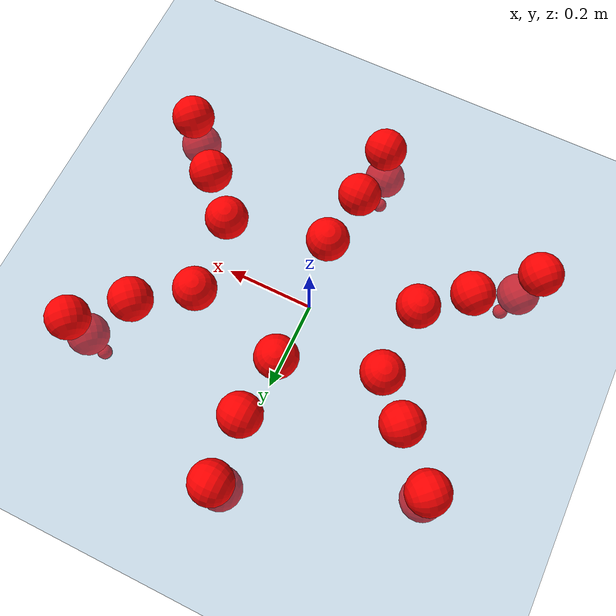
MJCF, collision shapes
<mujoco model="Golem">
  <compiler angle="radian" assetdir="assets" balanceinertia="true" inertiafromgeom="false"/>

  <option timestep="0.005" density="1.2" viscosity="2e-05"/>

  <size nkey="1"/>

  <visual>
    <quality shadowsize="8192"/>
    <map shadowclip="0.5"/>
  </visual>

  <default>
    <default class="/">
      <joint armature="0.01" damping="0.01" frictionloss="0.01"/>
      <geom contype="0" conaffinity="0" group="1" solref="-1000 -80"/>
      <site size="0.01 0.005 0.005" group="5"/>
      <general forcelimited="true" biastype="affine" gainprm="25" biasprm="0 -25 -0.5"/>
      <default class="visual">
        <geom type="mesh" group="2"/>
      </default>
      <default class="collision">
        <geom group="3"/>
      </default>
      <default class="foot">
        <geom size="0.01 0 0" condim="6" group="4" priority="1" solimp="0.015 1 0.01"/>
      </default>
      <default class="reward_collision_sphere">
        <geom group="5" rgba="1 0 0 1"/>
      </default>
    </default>
  </default>

  <asset>
    <texture type="skybox" colorspace="auto" name="//unnamed_texture_0" builtin="gradient" rgb1="0.95 0.95 0.95" rgb2="0.95 0.95 0.95" width="100" height="600"/>
    <texture type="2d" colorspace="auto" name="texplane" builtin="checker" rgb1="0.345 0.575 0.748" rgb2="0.345 0.575 0.748" markrgb="1 1 1" width="512" height="512"/>
    <material name="MatPlane" class="/" texture="texplane" texuniform="true" texrepeat="2 2" specular="0.9"/>
    <mesh name="body" class="/" file="body.stl" scale="0.001 0.001 0.001"/>
    <mesh name="coxa" class="/" file="coxa.stl" scale="0.001 0.001 0.001"/>
    <mesh name="femur" class="/" file="femur.stl" scale="0.001 0.001 0.001"/>
    <mesh name="tibia" class="/" file="tibia.stl" scale="0.001 0.001 0.001"/>
    <mesh name="tarsus" class="/" file="tarsus.stl" scale="0.001 0.001 0.001"/>
  </asset>

  <worldbody>
    <geom name="floor" class="/" size="100 100 0.125" type="plane" group="0" material="MatPlane"/>
    <light name="toplight_shadow" class="/" pos="0 0 5" dir="0.0990148 0.0990148 -0.990148" type="directional" ambient="0.04 0.04 0.04" diffuse="0.55 0.55 0.55" specular="0.12 0.12 0.12"/>
    <light name="toplight_fill" class="/" pos="0 0 5" dir="0.0990148 0.0990148 -0.990148" type="directional" castshadow="false" ambient="0.04 0.04 0.04" diffuse="0.3 0.3 0.3" specular="0.08 0.08 0.08"/>
    <body name="trunk" pos="0.0112064 0.000427918 -0.00118563" quat="0.999973 -0.00274903 -0.00536193 -0.00413631">
      <inertial pos="0.00394619 -0.0157851 -0.0144826" quat="0.998989 -0.0408281 0.0151809 0.0111077" mass="7.59667" diaginertia="0.0741107 0.0402226 0.00754172"/>
      <joint name="//unnamed_joint_0" type="free"/>
      <geom name="//unnamed_geom_1" class="/" pos="0 0 0.0593372" quat="1 0 0 0" type="mesh" rgba="0.9 0.9 0.9 1" mesh="body"/>
      <site name="imu" class="/" pos="0.190367 -0.0633453 0.13447" size="0.012424"/>
      <camera name="track" class="/" pos="0 -2.67513 0" quat="0.707107 0.707107 0 0" mode="trackcom"/>
      <camera name="ego_camera" class="/" pos="0.190122 0 0.0927143" quat="-0.5 -0.5 0.5 0.5"/>
      <body name="coxa_RR" pos="-0.261983 -0.123981 0.0544117" quat="0.38732 0.00211872 -0.00371514 -0.921936">
        <inertial pos="-0.0100636 -0.00748199 -0.00790748" quat="0.996796 0.0467919 0.057482 0.0300776" mass="0.256545" diaginertia="0.0545963 0.0325497 0.00606722"/>
        <joint name="coxa_joint_RR" class="/" pos="0 0 0" axis="-0.000681922 0.00229559 -0.999997" range="-3.15278 3.45663" armature="0.00273746" damping="0" frictionloss="0.011895"/>
        <geom name="//unnamed_geom_2" class="/" type="mesh" rgba="0.2 0.2 0.2 1" mesh="coxa"/>
        <geom name="//unnamed_geom_3" class="reward_collision_sphere" size="0.0496958" pos="-0.0438744 0 0"/>
        <body name="femur_RR" pos="0.0793493 -0.0135256 0.00557399" quat="0.501736 -0.496545 0.49895 0.502746">
          <inertial pos="-0.0140441 -0.00734188 0.000284255" quat="0.997689 -0.0490309 0.0437556 0.0172852" mass="0.400296" diaginertia="0.0687448 0.044196 0.00686057"/>
          <joint name="femur_joint_RR" class="/" pos="0 0 0" axis="-0.000509882 0.00223898 -0.999997" range="-3.32524 3.3354" armature="0.0115304" damping="0.0752695" frictionloss="0.00789253"/>
          <geom name="//unnamed_geom_4" class="/" type="mesh" rgba="0.9 0.9 0.9 1" mesh="femur"/>
          <geom name="//unnamed_geom_5" class="reward_collision_sphere" size="0.0496958"/>
          <body name="tibia_RR" pos="-0.00293357 -0.159463 -0.00979982" quat="-0.000378039 0.99999 3.30465e-05 0.00435871">
            <inertial pos="0.0114673 -0.00210614 -0.00148732" quat="0.999307 -0.0109824 0.02623 0.0240192" mass="0.307354" diaginertia="0.0609895 0.0437964 0.00585255"/>
            <joint name="tibia_joint_RR" class="/" pos="0 0 0" axis="-0.0239617 0.0576085 0.998052" range="-2.99945 3.14469" armature="0.0134124" damping="0.0211368" frictionloss="0.0122836"/>
            <geom name="//unnamed_geom_6" class="/" type="mesh" rgba="0.2 0.2 0.2 1" mesh="tibia"/>
            <geom name="//unnamed_geom_7" class="reward_collision_sphere" size="0.0496958"/>
            <body name="tarsus_RR" pos="0.141056 -0.0106645 -0.00110231" quat="0.999989 -0.00267143 0.00387365 -0.000845329">
              <inertial pos="0.0888591 0.00338054 0.00745762" quat="0.499112 0.499363 0.501664 0.499857" mass="0.317978" diaginertia="0.0576011 0.0358822 0.00555869"/>
              <joint name="tarsus_joint_RR" class="/" pos="0 0 0" axis="-0.0186662 -0.00130778 0.999825" range="-3.15944 3.13977" armature="0.0108468" damping="0.0155116" frictionloss="0.0199253"/>
              <geom name="//unnamed_geom_8" class="/" type="mesh" rgba="0.9 0.9 0.9 1" mesh="tarsus"/>
              <geom name="foot_1" class="foot" size="0.0136844" pos="0.163798 0 0" quat="0 -0.707107 0 0.707107"/>
              <geom name="//unnamed_geom_10" class="reward_collision_sphere" size="0.0496958"/>
              <geom name="//unnamed_geom_11" class="reward_collision_sphere" size="0.0186359" pos="0.157216 0 0"/>
              <site name="foot_1" class="foot" pos="0.163798 0 0" quat="0 -0.707107 0 0.707107" size="0.012424"/>
            </body>
          </body>
        </body>
      </body>
      <body name="coxa_RM" pos="0.0140521 -0.189852 0.0591853" quat="0.705363 -0.00144565 -0.00130902 -0.708843">
        <inertial pos="0.0136568 -0.00109061 0.00430924" quat="0.999999 -0.00022924 -0.00114048 0.000566122" mass="0.319707" diaginertia="0.0606334 0.031638 0.00560731"/>
        <joint name="coxa_joint_RM" class="/" pos="0 0 0" axis="0.000320974 -0.000536905 -1" range="-3.37816 3.12344" armature="0.00502801" damping="0" frictionloss="0.012493"/>
        <geom name="//unnamed_geom_12" class="/" type="mesh" rgba="0.2 0.2 0.2 1" mesh="coxa"/>
        <geom name="//unnamed_geom_13" class="reward_collision_sphere" size="0.0496958" pos="-0.0438744 0 0"/>
        <body name="femur_RM" pos="0.0942559 -0.0152506 -0.013393" quat="0.497305 -0.503145 0.498506 0.501023">
          <inertial pos="-0.00241588 0.00898474 -0.00680902" quat="0.997092 -0.0151463 0.0617807 0.0419753" mass="0.414718" diaginertia="0.0882436 0.0507738 0.00868993"/>
          <joint name="femur_joint_RM" class="/" pos="0 0 0" axis="-0.00429063 -0.00737115 -0.999964" range="-2.82847 3.24421" armature="0.0119196" damping="0" frictionloss="0.0122647"/>
          <geom name="//unnamed_geom_14" class="/" type="mesh" rgba="0.9 0.9 0.9 1" mesh="femur"/>
          <geom name="//unnamed_geom_15" class="reward_collision_sphere" size="0.0496958"/>
          <body name="tibia_RM" pos="0.0133031 -0.140174 -0.00559645" quat="0.00167427 0.999969 -0.00464466 -0.00614694">
            <inertial pos="0.0108537 -0.00016824 0.00505909" quat="0.998307 -0.0276612 -0.0339074 0.0383213" mass="0.378879" diaginertia="0.0692973 0.0514905 0.00841734"/>
            <joint name="tibia_joint_RM" class="/" pos="0 0 0" axis="0.0153339 -0.0230945 0.999616" stiffness="0.0700685" range="-3.12555 3.15627" armature="0.014225" damping="0.0567258" frictionloss="0.0155772"/>
            <geom name="//unnamed_geom_16" class="/" type="mesh" rgba="0.2 0.2 0.2 1" mesh="tibia"/>
            <geom name="//unnamed_geom_17" class="reward_collision_sphere" size="0.0496958"/>
            <body name="tarsus_RM" pos="0.125049 -0.00607786 0.0117159" quat="0.999977 -0.000324544 0.00084128 -0.00679079">
              <inertial pos="0.0870315 -0.003415 -0.000290837" quat="0.498808 0.484138 0.525707 0.49034" mass="0.388014" diaginertia="0.065166 0.0433638 0.00550271"/>
              <joint name="tarsus_joint_RM" class="/" pos="0 0 0" axis="-0.044907 0.0464417 0.997911" range="-2.92372 2.82468" armature="0.0185566" damping="0.00719712" frictionloss="0.0221792"/>
              <geom name="//unnamed_geom_18" class="/" type="mesh" rgba="0.9 0.9 0.9 1" mesh="tarsus"/>
              <geom name="foot_2" class="foot" size="0.00981703" pos="0.163798 0 0" quat="0 -0.707107 0 0.707107"/>
              <geom name="//unnamed_geom_20" class="reward_collision_sphere" size="0.0496958"/>
              <geom name="//unnamed_geom_21" class="reward_collision_sphere" size="0.0186359" pos="0.157216 0 0"/>
              <site name="foot_2" class="foot" pos="0.163798 0 0" quat="0 -0.707107 0 0.707107" size="0.012424"/>
            </body>
          </body>
        </body>
      </body>
      <body name="coxa_RF" pos="0.27404 -0.123525 0.0579895" quat="0.924916 0.00088427 0.00614492 -0.380122">
        <inertial pos="-0.0139991 -0.014297 -0.00143967" quat="0.999995 -0.00299663 0.00085513 0.000114075" mass="0.37121" diaginertia="0.071493 0.0486514 0.00691163"/>
        <joint name="coxa_joint_RF" class="/" pos="0 0 0" axis="-0.0249701 -0.0281725 -0.999291" stiffness="0.0777811" range="-3.30061 3.42631" armature="0.0169724" damping="0" frictionloss="0.0107275"/>
        <geom name="//unnamed_geom_22" class="/" type="mesh" rgba="0.2 0.2 0.2 1" mesh="coxa"/>
        <geom name="//unnamed_geom_23" class="reward_collision_sphere" size="0.0496958" pos="-0.0438744 0 0"/>
        <body name="femur_RF" pos="0.0775172 -3.77322e-05 0.00582476" quat="0.504124 -0.50223 0.497708 0.495894">
          <inertial pos="0.000399942 0.00935071 -0.0152124" quat="0.997927 0.0354311 0.0458991 -0.027926" mass="0.398096" diaginertia="0.0783765 0.0509785 0.00959357"/>
          <joint name="femur_joint_RF" class="/" pos="0 0 0" axis="-0.0413893 -0.0655699 -0.996989" range="-3.09531 3.32268" armature="0.00191757" damping="0.00453887" frictionloss="0.00519121"/>
          <geom name="//unnamed_geom_24" class="/" type="mesh" rgba="0.9 0.9 0.9 1" mesh="femur"/>
          <geom name="//unnamed_geom_25" class="reward_collision_sphere" size="0.0496958"/>
          <body name="tibia_RF" pos="0.00453309 -0.152867 -0.00276874" quat="0.00403897 0.99999 -0.000753374 0.00145874">
            <inertial pos="-0.00155504 -3.0838e-07 0.000144719" quat="0.998214 0.00243706 -0.0582736 0.0129533" mass="0.462742" diaginertia="0.0736359 0.0491171 0.00629979"/>
            <joint name="tibia_joint_RF" class="/" pos="0 0 0" axis="0.0199851 0.00294825 0.999796" stiffness="0.0481849" range="-3.15564 2.85257" armature="0.0105226" damping="0.0162622" frictionloss="0.00845339"/>
            <geom name="//unnamed_geom_26" class="/" type="mesh" rgba="0.2 0.2 0.2 1" mesh="tibia"/>
            <geom name="//unnamed_geom_27" class="reward_collision_sphere" size="0.0496958"/>
            <body name="tarsus_RF" pos="0.128944 -0.000676221 0.00333566" quat="0.99997 -0.000775579 0.00747223 0.00166917">
              <inertial pos="0.093506 -0.00014938 -0.0010154" quat="0.535356 0.489762 0.465478 0.506811" mass="0.436297" diaginertia="0.0755411 0.0488798 0.00897893"/>
              <joint name="tarsus_joint_RF" class="/" pos="0 0 0" axis="-0.0281556 -0.00710917 0.999578" range="-3.15017 3.16624" armature="0.012742" damping="0.00445504" frictionloss="0.00636049"/>
              <geom name="//unnamed_geom_28" class="/" type="mesh" rgba="0.9 0.9 0.9 1" mesh="tarsus"/>
              <geom name="foot_3" class="foot" size="0.00623226" pos="0.163798 0 0" quat="0 -0.707107 0 0.707107"/>
              <geom name="//unnamed_geom_30" class="reward_collision_sphere" size="0.0496958"/>
              <geom name="//unnamed_geom_31" class="reward_collision_sphere" size="0.0186359" pos="0.157216 0 0"/>
              <site name="foot_3" class="foot" pos="0.163798 0 0" quat="0 -0.707107 0 0.707107" size="0.012424"/>
            </body>
          </body>
        </body>
      </body>
      <body name="coxa_LR" pos="-0.252458 0.10773 0.0539059" quat="0.38583 -0.00513468 -0.00247104 0.922552">
        <inertial pos="0.000326543 0.000742851 -0.00612219" quat="0.999999 -0.000223937 0.00170623 -1.5545e-06" mass="0.419315" diaginertia="0.0772821 0.0409732 0.00813511"/>
        <joint name="coxa_joint_LR" class="/" pos="0 0 0" axis="-0.0537818 0.0377431 -0.997839" stiffness="0.036284" range="-3.38964 3.14116" armature="0.0170282" damping="0" frictionloss="0.0124145"/>
        <geom name="//unnamed_geom_32" class="/" type="mesh" rgba="0.2 0.2 0.2 1" mesh="coxa"/>
        <geom name="//unnamed_geom_33" class="reward_collision_sphere" size="0.0496958" pos="-0.0438744 0 0"/>
        <body name="femur_LR" pos="0.072867 -0.00149309 0.0139674" quat="0.497622 -0.501123 0.499137 0.502105">
          <inertial pos="-0.000653882 0.00297091 -0.00839025" quat="0.999334 -0.00544434 0.00526027 -0.0357004" mass="0.34961" diaginertia="0.059401 0.047307 0.00597924"/>
          <joint name="femur_joint_LR" class="/" pos="0 0 0" axis="0.0131606 0.0121647 0.999839" stiffness="0.0539589" range="-2.86549 2.86939" armature="0.0113282" damping="0.0761515" frictionloss="0.015986"/>
          <geom name="//unnamed_geom_34" class="/" type="mesh" rgba="0.9 0.9 0.9 1" mesh="femur"/>
          <geom name="//unnamed_geom_35" class="reward_collision_sphere" size="0.0496958"/>
          <body name="tibia_LR" pos="0.00330045 -0.145798 0.000466743" quat="-0.0010849 0.999996 -0.00249409 -0.000307905">
            <inertial pos="0.0156229 0.00589756 0.0142303" quat="0.999875 -0.00418911 -0.00893381 -0.0123685" mass="0.382258" diaginertia="0.0695078 0.0372173 0.00803989"/>
            <joint name="tibia_joint_LR" class="/" pos="0 0 0" axis="0.0010762 -0.000121281 -0.999999" stiffness="0.0494574" range="-3.4234 2.90206" armature="0.0180987" damping="0" frictionloss="0.0165739"/>
            <geom name="//unnamed_geom_36" class="/" type="mesh" rgba="0.2 0.2 0.2 1" mesh="tibia"/>
            <geom name="//unnamed_geom_37" class="reward_collision_sphere" size="0.0496958"/>
            <body name="tarsus_LR" pos="0.13377 0.00822995 -0.00565781" quat="1 -0.000179548 4.95885e-05 7.47061e-05">
              <inertial pos="0.0836732 0.0013181 -0.00558575" quat="0.500252 0.495193 0.502145 0.502376" mass="0.350347" diaginertia="0.0619138 0.0309077 0.00564476"/>
              <joint name="tarsus_joint_LR" class="/" pos="0 0 0" axis="0.000700323 0.0721749 -0.997392" range="-3.07316 3.37474" armature="0.0151016" damping="0.0331343" frictionloss="0.00515289"/>
              <geom name="//unnamed_geom_38" class="/" type="mesh" rgba="0.9 0.9 0.9 1" mesh="tarsus"/>
              <geom name="foot_4" class="foot" size="0.00968821" pos="0.163798 0 0" quat="0.707107 0 -0.707107 0"/>
              <geom name="//unnamed_geom_40" class="reward_collision_sphere" size="0.0496958"/>
              <geom name="//unnamed_geom_41" class="reward_collision_sphere" size="0.0186359" pos="0.157216 0 0"/>
              <site name="foot_4" class="foot" pos="0.163798 0 0" quat="0.707107 0 -0.707107 0" size="0.012424"/>
            </body>
          </body>
        </body>
      </body>
      <body name="coxa_LM" pos="-0.00336072 0.189851 0.0564298" quat="0.708734 -0.00153379 0.00276727 0.705469">
        <inertial pos="-0.0141487 -0.0153498 -0.00617347" quat="0.999997 -0.000492831 0.0012976 0.00212528" mass="0.380904" diaginertia="0.061313 0.0420123 0.00667122"/>
        <joint name="coxa_joint_LM" class="/" pos="0 0 0" axis="0.00016398 0.0223269 -0.999751" stiffness="0.0584961" range="-3.33547 3.33628" armature="0.00398116" damping="0.0253885" frictionloss="0.00649626"/>
        <geom name="//unnamed_geom_42" class="/" type="mesh" rgba="0.2 0.2 0.2 1" mesh="coxa"/>
        <geom name="//unnamed_geom_43" class="reward_collision_sphere" size="0.0496958" pos="-0.0438744 0 0"/>
        <body name="femur_LM" pos="0.100587 -0.0104793 0.00738823" quat="0.502135 -0.495096 0.49789 0.504823">
          <inertial pos="0.0104756 -0.00947564 0.00364325" quat="0.998247 0.0232869 -0.0465235 -0.028213" mass="0.361033" diaginertia="0.0533603 0.0453408 0.00601411"/>
          <joint name="femur_joint_LM" class="/" pos="0 0 0" axis="0.0132546 0.0256371 0.999583" range="-3.28305 3.12299" armature="0.0217755" damping="0.0291205" frictionloss="0.011374"/>
          <geom name="//unnamed_geom_44" class="/" type="mesh" rgba="0.9 0.9 0.9 1" mesh="femur"/>
          <geom name="//unnamed_geom_45" class="reward_collision_sphere" size="0.0496958"/>
          <body name="tibia_LM" pos="0.00229488 -0.148205 0.011257" quat="-0.000238542 1 0.000632735 -0.000299566">
            <inertial pos="-0.00605996 -0.0133944 -0.0083266" quat="0.999483 0.0304563 0.0090045 -0.00493608" mass="0.401259" diaginertia="0.0772987 0.0404353 0.00625759"/>
            <joint name="tibia_joint_LM" class="/" pos="0 0 0" axis="-0.0320468 0.0374239 -0.998785" stiffness="0.0269965" range="-3.00824 2.91372" armature="0.0110576" damping="0.0467268" frictionloss="0.0185103"/>
            <geom name="//unnamed_geom_46" class="/" type="mesh" rgba="0.2 0.2 0.2 1" mesh="tibia"/>
            <geom name="//unnamed_geom_47" class="reward_collision_sphere" size="0.0496958"/>
            <body name="tarsus_LM" pos="0.117498 0.00135429 -0.00604464" quat="1 -0.000152267 9.06439e-05 -0.000345163">
              <inertial pos="0.0913702 0.00108565 -0.000571924" quat="0.49714 0.471593 0.495185 0.534083" mass="0.257504" diaginertia="0.0499348 0.0345394 0.00663522"/>
              <joint name="tarsus_joint_LM" class="/" pos="0 0 0" axis="-0.0312226 0.0226144 -0.999257" range="-3.13881 3.35379" armature="0.0120808" damping="0" frictionloss="0.0123813"/>
              <geom name="//unnamed_geom_48" class="/" type="mesh" rgba="0.9 0.9 0.9 1" mesh="tarsus"/>
              <geom name="foot_5" class="foot" size="0.00949782" pos="0.163798 0 0" quat="0.707107 0 -0.707107 0"/>
              <geom name="//unnamed_geom_50" class="reward_collision_sphere" size="0.0496958"/>
              <geom name="//unnamed_geom_51" class="reward_collision_sphere" size="0.0186359" pos="0.157216 0 0"/>
              <site name="foot_5" class="foot" pos="0.163798 0 0" quat="0.707107 0 -0.707107 0" size="0.012424"/>
            </body>
          </body>
        </body>
      </body>
      <body name="coxa_LF" pos="0.257158 0.119076 0.0588668" quat="0.923986 -0.000148859 0.00012436 0.382427">
        <inertial pos="0.00136183 -0.00507233 0.000272054" quat="1 -2.36341e-05 -5.9636e-05 -8.63314e-06" mass="0.465622" diaginertia="0.0797102 0.0446383 0.00722374"/>
        <joint name="coxa_joint_LF" class="/" pos="0 0 0" axis="-0.0382422 0.0615974 -0.997368" range="-3.17794 3.2985" armature="0.00811902" damping="0.0253529" frictionloss="0.0117916"/>
        <geom name="//unnamed_geom_52" class="/" type="mesh" rgba="0.2 0.2 0.2 1" mesh="coxa"/>
        <geom name="//unnamed_geom_53" class="reward_collision_sphere" size="0.0496958" pos="-0.0438744 0 0"/>
        <body name="femur_LF" pos="0.0935807 -0.0154705 0.0159832" quat="0.500554 -0.499995 0.501338 0.498107">
          <inertial pos="0.0129185 -0.00796918 0.00535032" quat="0.999995 0.000153069 -0.000664262 0.00312654" mass="0.366934" diaginertia="0.0785735 0.0549093 0.00752618"/>
          <joint name="femur_joint_LF" class="/" pos="0 0 0" axis="-0.0251289 -0.0579298 0.998004" range="-3.1184 3.41499" armature="0.0199543" damping="0.00188528" frictionloss="0.00967886"/>
          <geom name="//unnamed_geom_54" class="/" type="mesh" rgba="0.9 0.9 0.9 1" mesh="femur"/>
          <geom name="//unnamed_geom_55" class="reward_collision_sphere" size="0.0496958"/>
          <body name="tibia_LF" pos="0.0142213 -0.14103 -0.0081429" quat="-0.000487626 0.999996 -0.00111519 0.00242595">
            <inertial pos="-0.00598538 -0.00829414 -0.00311063" quat="0.99758 -0.0500787 0.0446454 -0.0182541" mass="0.39326" diaginertia="0.0670376 0.0389811 0.00625565"/>
            <joint name="tibia_joint_LF" class="/" pos="0 0 0" axis="-0.00549031 -0.00306378 -0.99998" stiffness="0.00501339" range="-3.14361 3.31872" armature="0.0223601" damping="0.0120821" frictionloss="0.0117537"/>
            <geom name="//unnamed_geom_56" class="/" type="mesh" rgba="0.2 0.2 0.2 1" mesh="tibia"/>
            <geom name="//unnamed_geom_57" class="reward_collision_sphere" size="0.0496958"/>
            <body name="tarsus_LF" pos="0.13061 -0.00843735 -0.00405096" quat="0.999969 -0.00136804 0.00628727 0.00450063">
              <inertial pos="0.0759083 0.0134373 -0.00148342" quat="0.499191 0.49642 0.504463 0.499893" mass="0.432584" diaginertia="0.0821235 0.0495868 0.00822735"/>
              <joint name="tarsus_joint_LF" class="/" pos="0 0 0" axis="-0.0602589 0.0286907 -0.99777" range="-3.39985 3.08963" armature="0.0104393" damping="0" frictionloss="0.0126721"/>
              <geom name="//unnamed_geom_58" class="/" type="mesh" rgba="0.9 0.9 0.9 1" mesh="tarsus"/>
              <geom name="foot_6" class="foot" size="0.0179787" pos="0.163798 0 0" quat="0.707107 0 -0.707107 0"/>
              <geom name="//unnamed_geom_60" class="reward_collision_sphere" size="0.0496958"/>
              <geom name="//unnamed_geom_61" class="reward_collision_sphere" size="0.0186359" pos="0.157216 0 0"/>
              <site name="foot_6" class="foot" pos="0.163798 0 0" quat="0.707107 0 -0.707107 0" size="0.012424"/>
            </body>
          </body>
        </body>
      </body>
    </body>
  </worldbody>

  <contact>
    <pair class="/" geom1="floor" geom2="foot_1" name="//unnamed_contact_0"/>
    <pair class="/" geom1="floor" geom2="foot_2" name="//unnamed_contact_1"/>
    <pair class="/" geom1="floor" geom2="foot_3" name="//unnamed_contact_2"/>
    <pair class="/" geom1="floor" geom2="foot_4" name="//unnamed_contact_3"/>
    <pair class="/" geom1="floor" geom2="foot_5" name="//unnamed_contact_4"/>
    <pair class="/" geom1="floor" geom2="foot_6" name="//unnamed_contact_5"/>
  </contact>

  <actuator>
    <general name="coxa_joint_RR" class="/" joint="coxa_joint_RR" forcerange="-8.34467 8.34467" gainprm="23.1099" biasprm="0 -23.1099 -0.751577"/>
    <general name="femur_joint_RR" class="/" joint="femur_joint_RR" forcerange="-8.92598 8.92598" gainprm="23.1099" biasprm="0 -23.1099 -0.751577"/>
    <general name="tibia_joint_RR" class="/" joint="tibia_joint_RR" forcerange="-8.75338 8.75338" gainprm="23.1099" biasprm="0 -23.1099 -0.751577"/>
    <general name="tarsus_joint_RR" class="/" joint="tarsus_joint_RR" forcerange="-10.869 10.869" gainprm="23.1099" biasprm="0 -23.1099 -0.751577"/>
    <general name="coxa_joint_RM" class="/" joint="coxa_joint_RM" forcerange="-11.0307 11.0307" gainprm="23.1099" biasprm="0 -23.1099 -0.751577"/>
    <general name="femur_joint_RM" class="/" joint="femur_joint_RM" forcerange="-13.1124 13.1124" gainprm="23.1099" biasprm="0 -23.1099 -0.751577"/>
    <general name="tibia_joint_RM" class="/" joint="tibia_joint_RM" forcerange="-9.35463 9.35463" gainprm="23.1099" biasprm="0 -23.1099 -0.751577"/>
    <general name="tarsus_joint_RM" class="/" joint="tarsus_joint_RM" forcerange="-6.85931 6.85931" gainprm="23.1099" biasprm="0 -23.1099 -0.751577"/>
    <general name="coxa_joint_RF" class="/" joint="coxa_joint_RF" forcerange="-13.3091 13.3091" gainprm="23.1099" biasprm="0 -23.1099 -0.751577"/>
    <general name="femur_joint_RF" class="/" joint="femur_joint_RF" forcerange="-12.9445 12.9445" gainprm="23.1099" biasprm="0 -23.1099 -0.751577"/>
    <general name="tibia_joint_RF" class="/" joint="tibia_joint_RF" forcerange="-5.34536 5.34536" gainprm="23.1099" biasprm="0 -23.1099 -0.751577"/>
    <general name="tarsus_joint_RF" class="/" joint="tarsus_joint_RF" forcerange="-6.49324 6.49324" gainprm="23.1099" biasprm="0 -23.1099 -0.751577"/>
    <general name="coxa_joint_LR" class="/" joint="coxa_joint_LR" forcerange="-9.91491 9.91491" gainprm="23.1099" biasprm="0 -23.1099 -0.751577"/>
    <general name="femur_joint_LR" class="/" joint="femur_joint_LR" forcerange="-12.0825 12.0825" gainprm="23.1099" biasprm="0 -23.1099 -0.751577"/>
    <general name="tibia_joint_LR" class="/" joint="tibia_joint_LR" forcerange="-13.9752 13.9752" gainprm="23.1099" biasprm="0 -23.1099 -0.751577"/>
    <general name="tarsus_joint_LR" class="/" joint="tarsus_joint_LR" forcerange="-3.90984 3.90984" gainprm="23.1099" biasprm="0 -23.1099 -0.751577"/>
    <general name="coxa_joint_LM" class="/" joint="coxa_joint_LM" forcerange="-6.19182 6.19182" gainprm="23.1099" biasprm="0 -23.1099 -0.751577"/>
    <general name="femur_joint_LM" class="/" joint="femur_joint_LM" forcerange="-9.26165 9.26165" gainprm="23.1099" biasprm="0 -23.1099 -0.751577"/>
    <general name="tibia_joint_LM" class="/" joint="tibia_joint_LM" forcerange="-8.70675 8.70675" gainprm="23.1099" biasprm="0 -23.1099 -0.751577"/>
    <general name="tarsus_joint_LM" class="/" joint="tarsus_joint_LM" forcerange="-11.5082 11.5082" gainprm="23.1099" biasprm="0 -23.1099 -0.751577"/>
    <general name="coxa_joint_LF" class="/" joint="coxa_joint_LF" forcerange="-8.72199 8.72199" gainprm="23.1099" biasprm="0 -23.1099 -0.751577"/>
    <general name="femur_joint_LF" class="/" joint="femur_joint_LF" forcerange="-9.0339 9.0339" gainprm="23.1099" biasprm="0 -23.1099 -0.751577"/>
    <general name="tibia_joint_LF" class="/" joint="tibia_joint_LF" forcerange="-6.87018 6.87018" gainprm="23.1099" biasprm="0 -23.1099 -0.751577"/>
    <general name="tarsus_joint_LF" class="/" joint="tarsus_joint_LF" forcerange="-9.78247 9.78247" gainprm="23.1099" biasprm="0 -23.1099 -0.751577"/>
  </actuator>

  <sensor>
    <gyro site="imu" name="imu_angular_velocity"/>
    <velocimeter site="imu" name="imu_linear_velocity"/>
    <framelinvel objtype="site" objname="foot_1" name="foot_1_global_linear_velocity"/>
    <framelinvel objtype="site" objname="foot_2" name="foot_2_global_linear_velocity"/>
    <framelinvel objtype="site" objname="foot_3" name="foot_3_global_linear_velocity"/>
    <framelinvel objtype="site" objname="foot_4" name="foot_4_global_linear_velocity"/>
    <framelinvel objtype="site" objname="foot_5" name="foot_5_global_linear_velocity"/>
    <framelinvel objtype="site" objname="foot_6" name="foot_6_global_linear_velocity"/>
  </sensor>

  <keyframe>
    <key name="home" qpos="0 0 0.1457 1 0 0 0 0 0 0 0 0 0 0 0 0 0 0 0 0 0 0 0 0 0 0 0 0 0 0 0"/>
  </keyframe>
</mujoco>
